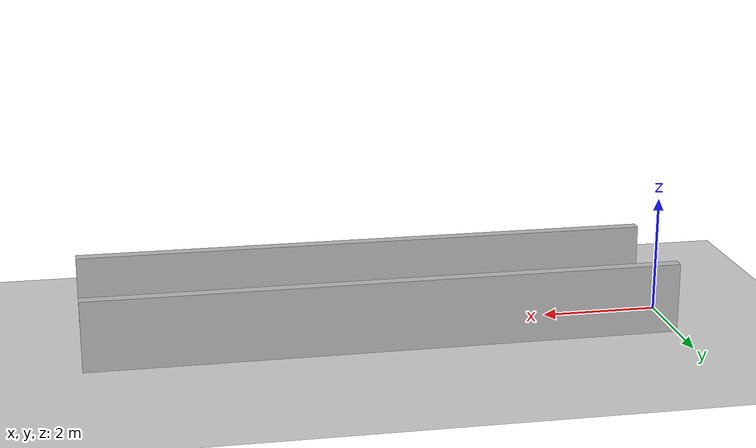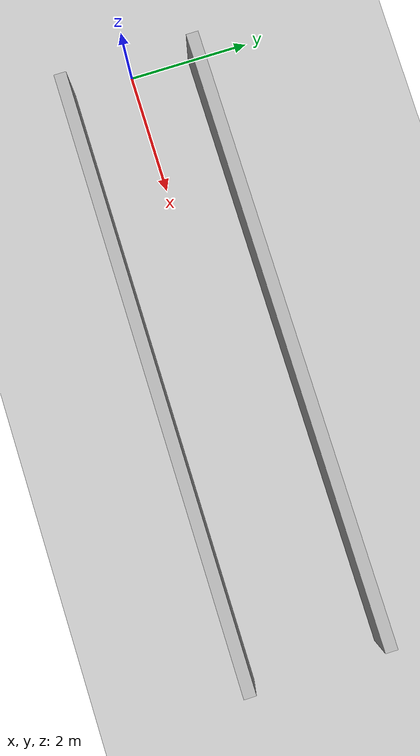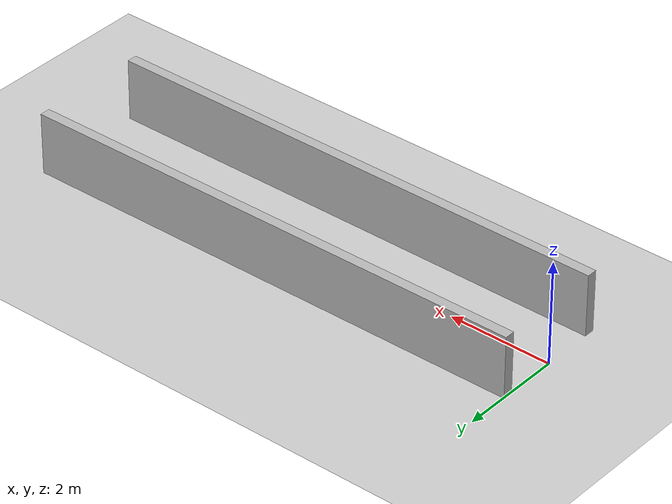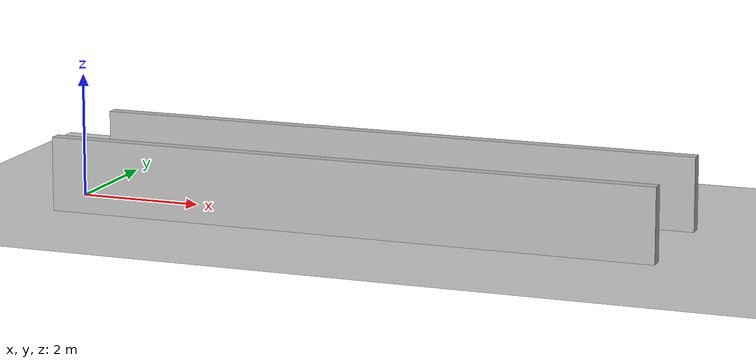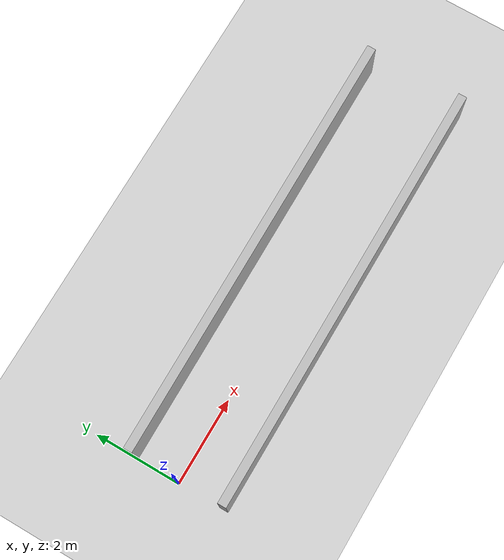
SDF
<?xml version="1.0"?>
<sdf version="1.6">
  <world name="v2-04g-corridor-s4910">
    <gravity>0 0 -9.81</gravity>
    <physics name="v2_deterministic" type="ode">
      <max_step_size>0.002</max_step_size>
      <real_time_update_rate>500</real_time_update_rate>
    </physics>
    <include>
      <uri>model://sun</uri>
    </include>
    <include>
      <uri>model://ground_plane</uri>
    </include>
    <model name="corridor-left">
      <static>true</static>
      <pose>4.993127271 1.106662846 0.600000000 0 0 0.003113301</pose>
      <link name="link">
        <collision name="collision">
          <geometry>
            <box>
              <size>10.000000 0.200000 1.200000</size>
            </box>
          </geometry>
        </collision>
        <visual name="visual">
          <geometry>
            <box>
              <size>10.000000 0.200000 1.200000</size>
            </box>
          </geometry>
        </visual>
      </link>
    </model>
    <model name="corridor-right">
      <static>true</static>
      <pose>5.004761466 -1.088466701 0.600000000 0 0 -0.001540023</pose>
      <link name="link">
        <collision name="collision">
          <geometry>
            <box>
              <size>10.000000 0.200000 1.200000</size>
            </box>
          </geometry>
        </collision>
        <visual name="visual">
          <geometry>
            <box>
              <size>10.000000 0.200000 1.200000</size>
            </box>
          </geometry>
        </visual>
      </link>
    </model>
  </world>
</sdf>
